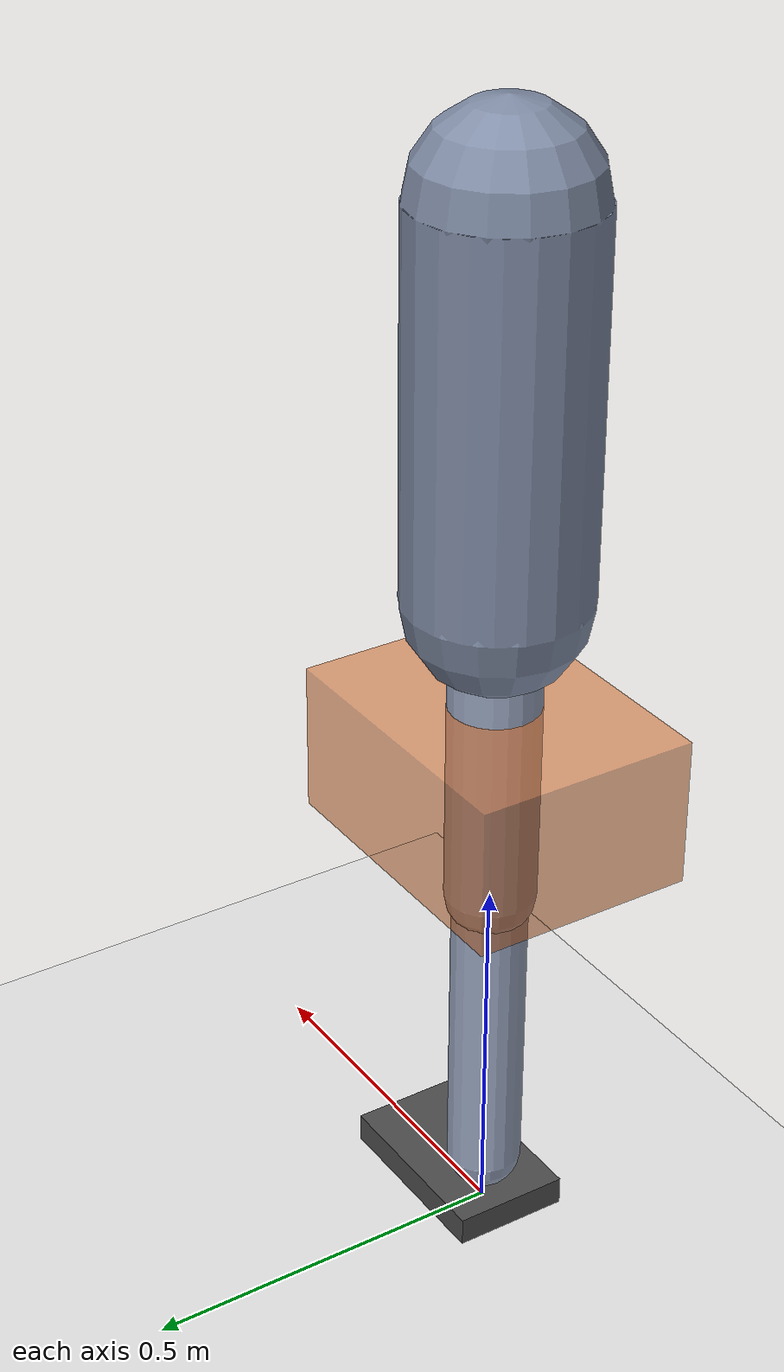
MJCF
<mujoco model="sagittal_humanoid_tote_lift">
  <compiler angle="radian"/>
  <option gravity="0 0 -9.81" timestep="0.001"><flag contact="disable"/></option>
  <worldbody>
    <geom type="plane" size="2 2 0.1" rgba="0.9 0.9 0.9 1"/>
    <geom type="box" pos="0.06 0 0.02" size="0.13 0.08 0.02" rgba="0.3 0.3 0.3 1"/>
    <body name="shank" pos="0 0 0.08">
      <joint name="ankle" type="hinge" axis="0 1 0" armature="0.000000"/>
      <inertial pos="0 0 0.18428" mass="6.7890" diaginertia="0.008486 0.106711 0.106711"/>
      <geom type="capsule" fromto="0 0 0 0 0 0.42558" size="0.05" rgba="0.6 0.65 0.75 1"/>

    <body name="thigh" pos="0 0 0.42558">
      <joint name="knee" type="hinge" axis="0 1 0" armature="0.000000"/>
      <inertial pos="0 0 0.18353" mass="14.6000" diaginertia="0.026280 0.231713 0.231713"/>
      <geom type="capsule" fromto="0 0 0 0 0 0.42385" size="0.06" rgba="0.6 0.65 0.75 1"/>

    <body name="trunk" pos="0 0 0.42385">
      <joint name="hip" type="hinge" axis="0 1 0" armature="0.000000"/>
      <inertial pos="0 0 0.29894" mass="42.1940" diaginertia="0.303797 1.024763 1.024763"/>
      <geom type="capsule" fromto="0 0 0 0 0 0.49824" size="0.12" rgba="0.5 0.55 0.65 1"/>

      <body name="upper_arm" pos="0 0 0.49824">
        <joint name="shoulder" type="hinge" axis="0 1 0" armature="0.000000"/>
        <inertial pos="0 0 -0.14030" mass="4.0880" diaginertia="0.003270 0.036909 0.036909"/>
        <geom type="capsule" fromto="0 0 0 0 0 -0.32178" size="0.035" rgba="0.6 0.65 0.75 1"/>

        <body name="forearm" pos="0 0 -0.32178">
          <joint name="elbow" type="hinge" axis="0 1 0" armature="0.000000"/>
          <inertial pos="0 0 -0.17226" mass="3.2120" diaginertia="0.002570 0.018361 0.018361"/>
          <geom type="capsule" fromto="0 0 0 0 0 -0.32258" size="0.03" rgba="0.6 0.65 0.75 1"/>

          <body name="tote" pos="0 0 -0.32258">
            <site name="grip" pos="0 0 0" size="0.02"/>
            <inertial pos="0.0 0 -0.10" mass="25.000" diaginertia="0.30 0.25 0.20"/>
            <geom type="box" pos="0 0 -0.10" size="0.20 0.15 0.10" rgba="0.85 0.45 0.2 0.6"/>
          </body>
        </body>
      </body>
    </body>
    </body>
    </body>
  </worldbody>
</mujoco>
